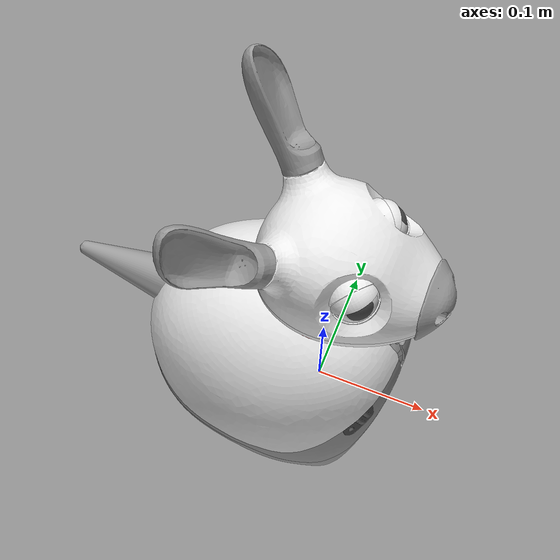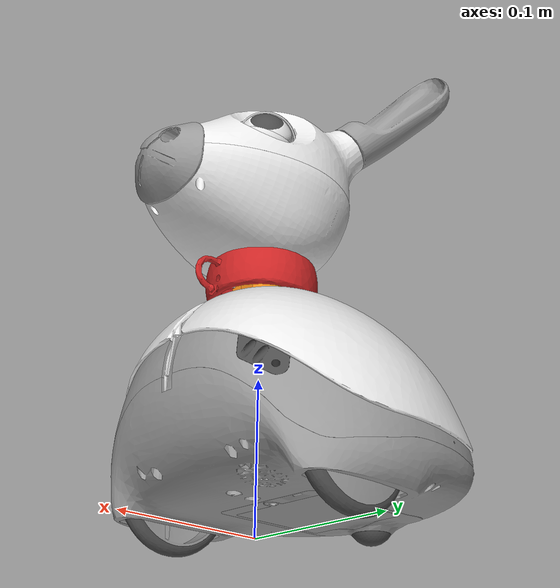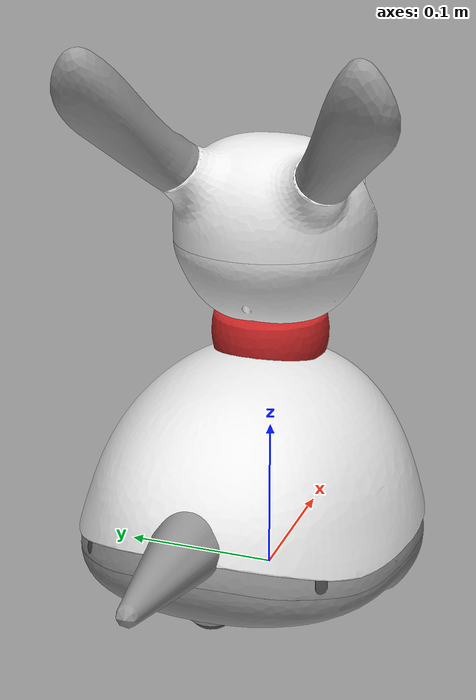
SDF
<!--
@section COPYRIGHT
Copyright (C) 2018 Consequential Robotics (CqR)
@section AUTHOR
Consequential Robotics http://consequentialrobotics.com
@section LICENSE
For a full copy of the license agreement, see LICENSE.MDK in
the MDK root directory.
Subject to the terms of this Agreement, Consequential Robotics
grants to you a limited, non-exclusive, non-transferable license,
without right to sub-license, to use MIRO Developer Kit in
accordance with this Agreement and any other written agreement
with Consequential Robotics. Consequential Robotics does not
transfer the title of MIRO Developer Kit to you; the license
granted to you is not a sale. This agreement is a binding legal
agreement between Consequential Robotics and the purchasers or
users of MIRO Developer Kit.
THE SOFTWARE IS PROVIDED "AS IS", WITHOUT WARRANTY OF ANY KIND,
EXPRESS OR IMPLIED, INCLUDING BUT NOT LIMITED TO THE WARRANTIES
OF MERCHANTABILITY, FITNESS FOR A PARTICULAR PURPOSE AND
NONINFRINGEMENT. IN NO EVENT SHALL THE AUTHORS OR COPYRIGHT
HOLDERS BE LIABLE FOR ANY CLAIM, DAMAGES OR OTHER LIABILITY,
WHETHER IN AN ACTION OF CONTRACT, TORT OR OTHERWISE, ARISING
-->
<?xml version="1.0"?>

<sdf version="1.5">
	<model name="miro_robot">

		<include>
			<uri>model://miro_model/components/miro_body</uri>
			<pose>0 0 0 0 0 0</pose>
		</include>

		<include>
			<uri>model://miro_model/components/miro_tail</uri>
			<pose>0 0 0 0 0 0</pose>
		</include>

		<joint type="revolute" name="body_neck">
			<pose>-0.002 0 0.081 0 0 0</pose>
			<parent>miro_body::body</parent>
			<child>miro_neck::neck</child>
			<axis>
				<xyz>0 1 0</xyz>
				<limit>
					<lower>0</lower>
					<upper>1.57</upper>
				</limit>
				<dynamics>
					<spring_stiffness>0.4</spring_stiffness>
					<spring_reference>0.0</spring_reference>
					<friction>0.01</friction>
					<damping>0.1</damping>
				</dynamics>
			</axis>
		</joint>

		<include>
			<uri>model://miro_model/components/miro_neck</uri>
			<pose>0 0 0 0 0 0</pose>
		</include>

		<joint type="revolute" name="neck_gmbl">
			<pose>-0.002 0 0.201 0 0 0</pose>
			<parent>miro_neck::neck</parent>
			<child>miro_gmbl::gmbl</child>
			<axis>
				<xyz>0 0 1</xyz>
				<limit>
					<lower>-1.57</lower>
					<upper>1.57</upper>
				</limit>
				<dynamics>
					<friction>0.01</friction>
					<damping>0.1</damping>
				</dynamics>
			</axis>
		</joint>

		<include>
			<uri>model://miro_model/components/miro_gmbl</uri>
			<pose>0 0 0 0 0 0</pose>
		</include>

		<joint type="revolute" name="gmbl_head">
			<pose>-0.002 0 0.201 0 0 0</pose>
			<parent>miro_gmbl::gmbl</parent>
			<child>miro_head::head</child>
			<axis>
				<xyz>0 1 0</xyz>
				<limit>
					<lower>-1.57</lower>
					<upper>1.57</upper>
				</limit>
				<dynamics>
					<spring_stiffness>0.1</spring_stiffness>
					<spring_reference>-0.5</spring_reference>
					<friction>0.01</friction>
					<damping>0.1</damping>
				</dynamics>
			</axis>
		</joint>

		<include>
			<uri>model://miro_model/components/miro_head</uri>
			<pose>0 0 0 0 0 0</pose>
		</include>

		<plugin name="miro_model" filename="libmiro_gazebo.so"/>

	</model>
</sdf>
